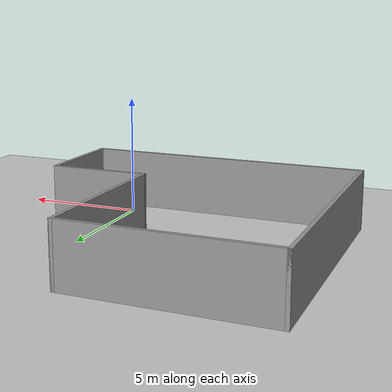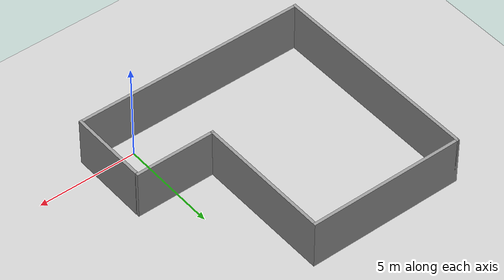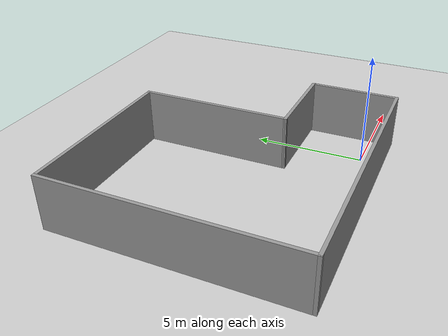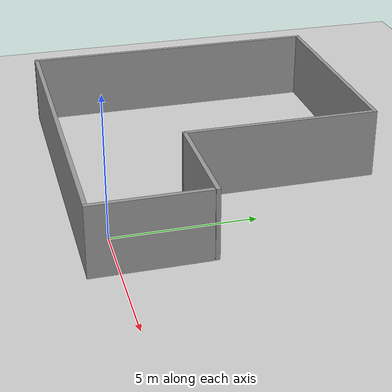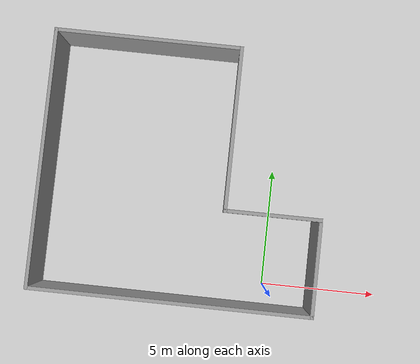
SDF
<sdf version="1.7">
 <world name="default">
  <light name="sun" type="directional">
   <pose>0 0 10 0 -0 0</pose>
   <diffuse>0.8 0.8 0.8 1</diffuse>
   <specular>0.1 0.1 0.1 1</specular>
   <attenuation>
    <range>1000</range>
    <constant>0.9</constant>
    <linear>0.01</linear>
    <quadratic>0.001</quadratic>
   </attenuation>
   <direction>-0.5 0.5 -1</direction>
   <spot><inner_angle>0</inner_angle><outer_angle>0</outer_angle><falloff>0</falloff></spot>
  </light>
  <model name="ground_plane">
   <static>1</static>
   <link name="link">
    <collision name="collision">
     <geometry><plane><normal>0 0 1</normal><size>100 100</size></plane></geometry>
     <surface><friction><ode><mu>100</mu><mu2>50</mu2></ode></friction></surface>
    </collision>
    <visual name="visual">
     <cast_shadows>0</cast_shadows>
     <geometry><plane><normal>0 0 1</normal><size>100 100</size></plane></geometry>
     <material>
      <script><uri>file://media/materials/scripts/gazebo.material</uri><name>Gazebo/Grey</name></script>
     </material>
    </visual>
   </link>
  </model>
  <gravity>0 0 -9.8</gravity>
  <magnetic_field>6e-06 2.3e-05 -4.2e-05</magnetic_field>
  <atmosphere type="adiabatic"/>
  <physics name="default_physics" default="0" type="ode">
   <max_step_size>0.001</max_step_size>
   <real_time_factor>1</real_time_factor>
   <real_time_update_rate>1000</real_time_update_rate>
  </physics>
  <scene><ambient>0.4 0.4 0.4 1</ambient><background>0.7 0.7 0.7 1</background><shadows>1</shadows></scene>
  <spherical_coordinates>
   <surface_model>EARTH_WGS84</surface_model>
   <latitude_deg>0</latitude_deg>
   <longitude_deg>0</longitude_deg>
   <elevation>0</elevation>
   <heading_deg>0</heading_deg>
  </spherical_coordinates>
  <audio><device>default</device></audio>
  <model name="Arena">
   <pose>-3.90745 4.47486 0 0 -0 0</pose>
   <link name="Wall_0">
    <collision name="Wall_0_Collision">
     <geometry><box><size>4 0.15 2.5</size></box></geometry>
     <pose>0 0 1.25 0 -0 0</pose>
    </collision>
    <visual name="Wall_0_Visual">
     <pose>0 0 1.25 0 -0 0</pose>
     <geometry><box><size>4 0.15 2.5</size></box></geometry>
     <material>
      <script><uri>file://media/materials/scripts/gazebo.material</uri><name>Gazebo/Grey</name></script>
      <ambient>0.870588 0.866667 0.854902 1</ambient>
     </material>
     <meta><layer>0</layer></meta>
    </visual>
    <pose>5.925 -3.5 0 0 -0 1.5708</pose>
   </link>
   <link name="Wall_11">
    <collision name="Wall_11_Collision">
     <geometry><box><size>7 0.15 2.5</size></box></geometry>
     <pose>0 0 1.25 0 -0 0</pose>
    </collision>
    <visual name="Wall_11_Visual">
     <pose>0 0 1.25 0 -0 0</pose>
     <geometry><box><size>7 0.15 2.5</size></box></geometry>
     <material>
      <script><uri>file://media/materials/scripts/gazebo.material</uri><name>Gazebo/Grey</name></script>
      <ambient>0.870588 0.866667 0.854902 1</ambient>
     </material>
     <meta><layer>0</layer></meta>
    </visual>
    <pose>1.925 2 0 0 -0 -1.5708</pose>
   </link>
   <link name="Wall_12">
    <collision name="Wall_12_Collision">
     <geometry><box><size>4.1391 0.15 2.5</size></box></geometry>
     <pose>0 0 1.25 0 -0 0</pose>
    </collision>
    <visual name="Wall_12_Visual">
     <pose>0 0 1.25 0 -0 0</pose>
     <geometry><box><size>4.1391 0.15 2.5</size></box></geometry>
     <material>
      <script><uri>file://media/materials/scripts/gazebo.material</uri><name>Gazebo/Grey</name></script>
      <ambient>0.870588 0.866667 0.854902 1</ambient>
     </material>
     <meta><layer>0</layer></meta>
    </visual>
    <pose>3.91954 -1.41861 0 0 -0 0.003203</pose>
   </link>
   <link name="Wall_2">
    <collision name="Wall_2_Collision">
     <geometry><box><size>12 0.15 2.5</size></box></geometry>
     <pose>0 0 1.25 0 -0 0</pose>
    </collision>
    <visual name="Wall_2_Visual">
     <pose>0 0 1.25 0 -0 0</pose>
     <geometry><box><size>12 0.15 2.5</size></box></geometry>
     <material>
      <script><uri>file://media/materials/scripts/gazebo.material</uri><name>Gazebo/Grey</name></script>
      <ambient>0.870588 0.866667 0.854902 1</ambient>
     </material>
     <meta><layer>0</layer></meta>
    </visual>
    <pose>0 -5.425 0 0 -0 3.14159</pose>
   </link>
   <link name="Wall_4">
    <collision name="Wall_4_Collision">
     <geometry><box><size>11 0.15 2.5</size></box></geometry>
     <pose>0 0 1.25 0 -0 0</pose>
    </collision>
    <visual name="Wall_4_Visual">
     <pose>0 0 1.25 0 -0 0</pose>
     <geometry><box><size>11 0.15 2.5</size></box></geometry>
     <material>
      <script><uri>file://media/materials/scripts/gazebo.material</uri><name>Gazebo/Grey</name></script>
      <ambient>0.870588 0.866667 0.854902 1</ambient>
     </material>
     <meta><layer>0</layer></meta>
    </visual>
    <pose>-5.925 0 0 0 -0 1.5708</pose>
   </link>
   <link name="Wall_9">
    <collision name="Wall_9_Collision">
     <geometry><box><size>8 0.15 2.5</size></box></geometry>
     <pose>0 0 1.25 0 -0 0</pose>
    </collision>
    <visual name="Wall_9_Visual">
     <pose>0 0 1.25 0 -0 0</pose>
     <geometry><box><size>8 0.15 2.5</size></box></geometry>
     <material>
      <script><uri>file://media/materials/scripts/gazebo.material</uri><name>Gazebo/Grey</name></script>
      <ambient>0.870588 0.866667 0.854902 1</ambient>
     </material>
     <meta><layer>0</layer></meta>
    </visual>
    <pose>-2 5.425 0 0 -0 0</pose>
   </link>
   <static>1</static>
  </model>
 </world>
</sdf>
